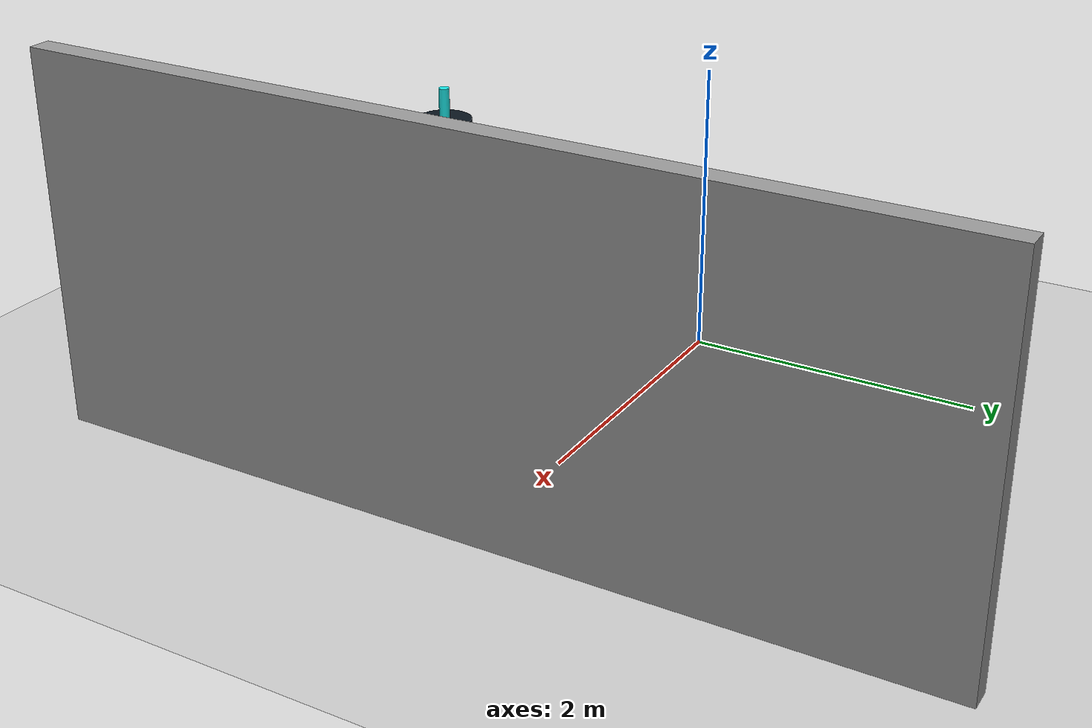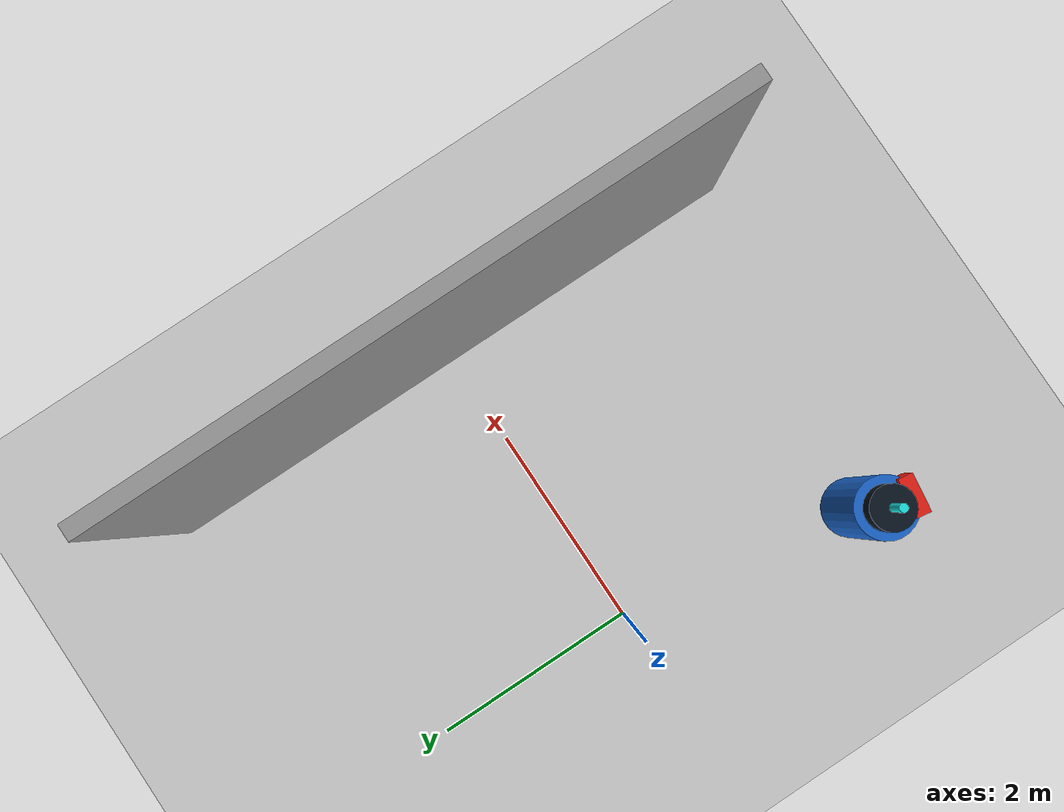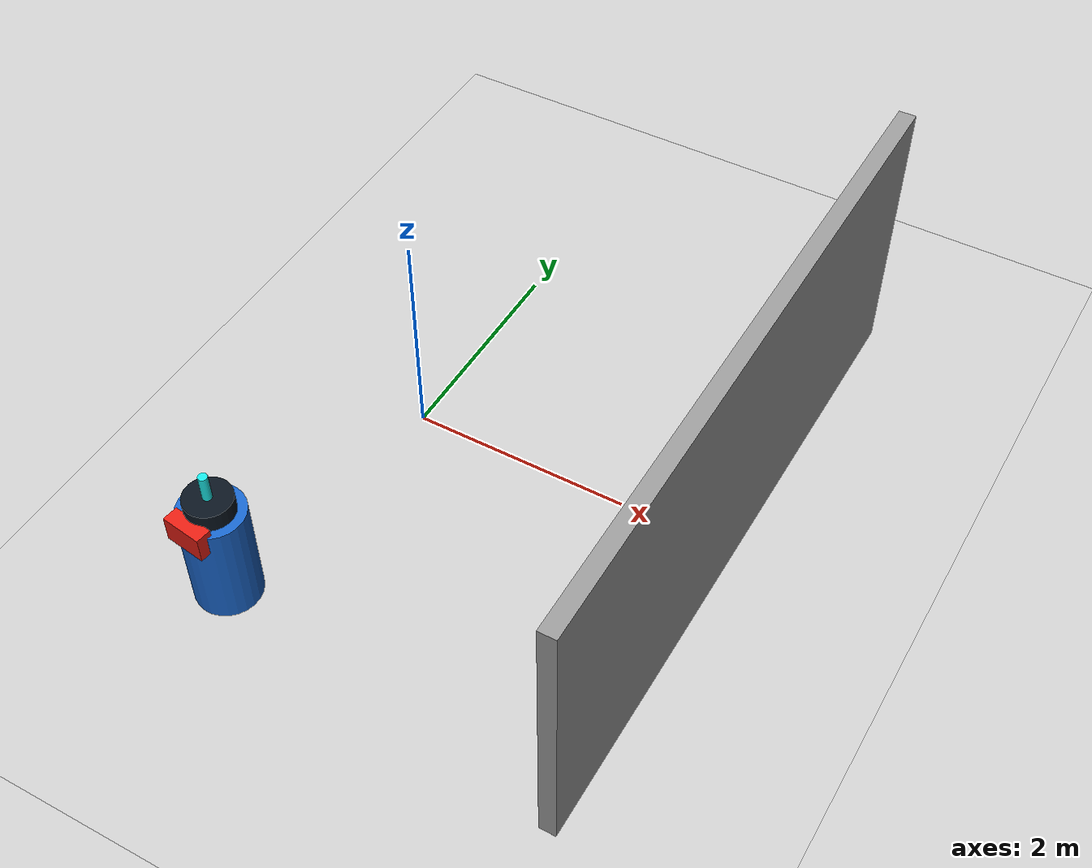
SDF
<sdf version="1.7">
 <world name="default">
  <plugin name="socnav_plugin" filename="libSocNavPlugin.so">
   <robot_name>robot</robot_name>
   <trajectory_file>/home/hunav_gz_classic_ws/SocNav3_trajectories/src6/000003880.json</trajectory_file>
   <human_slots>2</human_slots>
   <goal_angle_mesh>
    <angle_threshold>0.661330422453</angle_threshold>
    <uri>/home/hunav_gz_classic_ws/src/socnav_gazebo_reproducer/meshes/000003880_goal_angle_00.stl</uri>
   </goal_angle_mesh>
  </plugin>
  <light name="sun" type="directional">
   <pose>0 0 10 0 -0 0</pose>
   <diffuse>0.8 0.8 0.8 1</diffuse>
   <specular>0.2 0.2 0.2 1</specular>
   <attenuation>
    <range>1000</range>
    <constant>0.9</constant>
    <linear>0.01</linear>
    <quadratic>0.001</quadratic>
   </attenuation>
   <direction>-0.5 0.1 -0.9</direction>
   <spot><inner_angle>0</inner_angle><outer_angle>0</outer_angle><falloff>0</falloff></spot>
  </light>
  <model name="ground_plane">
   <static>1</static>
   <link name="link">
    <collision name="collision">
     <geometry><plane><normal>0 0 1</normal><size>100 100</size></plane></geometry>
     <surface><friction><ode><mu>100</mu><mu2>50</mu2></ode></friction></surface>
    </collision>
    <visual name="visual">
     <cast_shadows>0</cast_shadows>
     <geometry><plane><normal>0 0 1</normal><size>100 100</size></plane></geometry>
     <material>
      <script><uri>file://media/materials/scripts/kitchen.material</uri><name>Kitchen/CounterTop_H</name></script>
     </material>
    </visual>
   </link>
  </model>
  <gravity>0 0 -9.8</gravity>
  <magnetic_field>6e-06 2.3e-05 -4.2e-05</magnetic_field>
  <atmosphere type="adiabatic"/>
  <physics type="ode">
   <max_step_size>0.001</max_step_size>
   <real_time_factor>1</real_time_factor>
   <real_time_update_rate>1000</real_time_update_rate>
  </physics>
  <scene><ambient>0.4 0.4 0.4 1</ambient><background>0.7 0.7 0.7 1</background><shadows>1</shadows></scene>
  <audio><device>default</device></audio>
  <spherical_coordinates>
   <surface_model>EARTH_WGS84</surface_model>
   <latitude_deg>0</latitude_deg>
   <longitude_deg>0</longitude_deg>
   <elevation>0</elevation>
   <heading_deg>0</heading_deg>
  </spherical_coordinates>
  <model name="robot">
   <pose>-0.36924817036778423 -2.3692021215719286 0.5 0 0 -1.7145711341207748</pose>
   <link name="link">
    <collision name="collision">
     <geometry><cylinder><radius>0.2885999634853289</radius><length>1.0</length></cylinder></geometry>
    </collision>
    <visual name="visual">
     <geometry><cylinder><radius>0.2885999634853289</radius><length>1.0</length></cylinder></geometry>
     <material><ambient>0.1 0.4 0.8 1</ambient><diffuse>0.1 0.4 0.8 1</diffuse></material>
    </visual>
    <visual name="robot_top">
     <pose>0 0 0.58 0 0 0</pose>
     <geometry><cylinder><radius>0.2077919737094368</radius><length>0.16</length></cylinder></geometry>
     <material><ambient>0.04 0.08 0.12 1</ambient><diffuse>0.04 0.08 0.12 1</diffuse></material>
    </visual>
    <visual name="robot_front">
     <pose>0.24242396932767626 0 0.44 0 0 0</pose>
     <geometry><box><size>0.13852798247295786 0.369407953261221 0.24</size></box></geometry>
     <material><ambient>0.9 0.12 0.08 1</ambient><diffuse>0.9 0.12 0.08 1</diffuse></material>
    </visual>
    <visual name="robot_sensor">
     <pose>0 0 0.78 0 0 0</pose>
     <geometry><cylinder><radius>0.04040399488794605</radius><length>0.24</length></cylinder></geometry>
     <material><ambient>0.1 0.9 0.9 1</ambient><diffuse>0.1 0.9 0.9 1</diffuse></material>
    </visual>
   </link>
  </model>
  <model name="simple_world_test">
   <link name="Wall_0">
    <collision name="Wall_0_Collision">
     <geometry><box><size>6.0034626583323485 0.15 2.5</size></box></geometry>
     <pose>0 0 1.25 0 -0 0</pose>
    </collision>
    <visual name="Wall_0_Visual">
     <pose>0 0 1.25 0 -0 0</pose>
     <geometry><box><size>6.0034626583323485 0.15 2.5</size></box></geometry>
     <material>
      <script><uri>file://media/materials/scripts/gazebo.material</uri><name>Gazebo/Grey</name></script>
      <ambient>1 1 1 1</ambient>
     </material>
     <meta><layer>0</layer></meta>
    </visual>
    <pose>2.9917313291661745 0.0 0 0 -0 -1.5707963267948966</pose>
   </link>
   <static>1</static>
  </model>
 </world>
</sdf>
